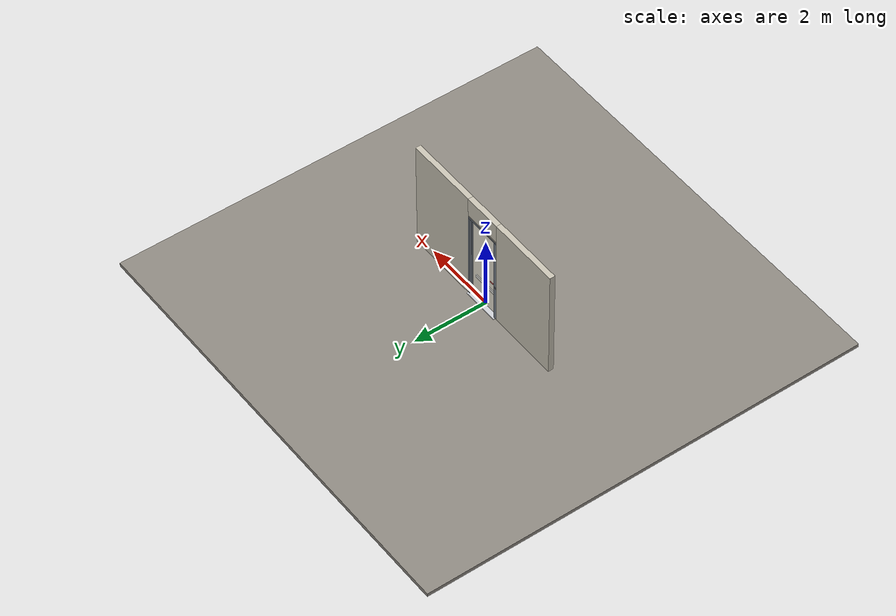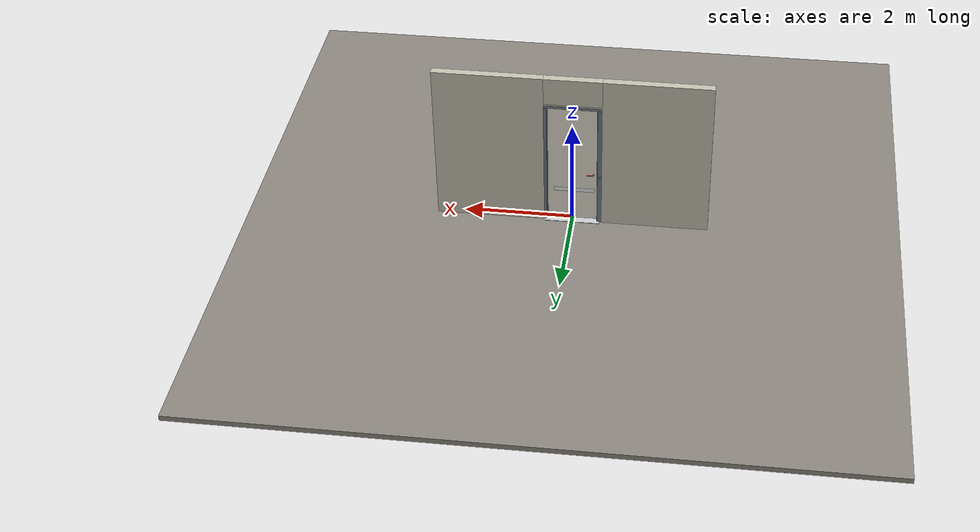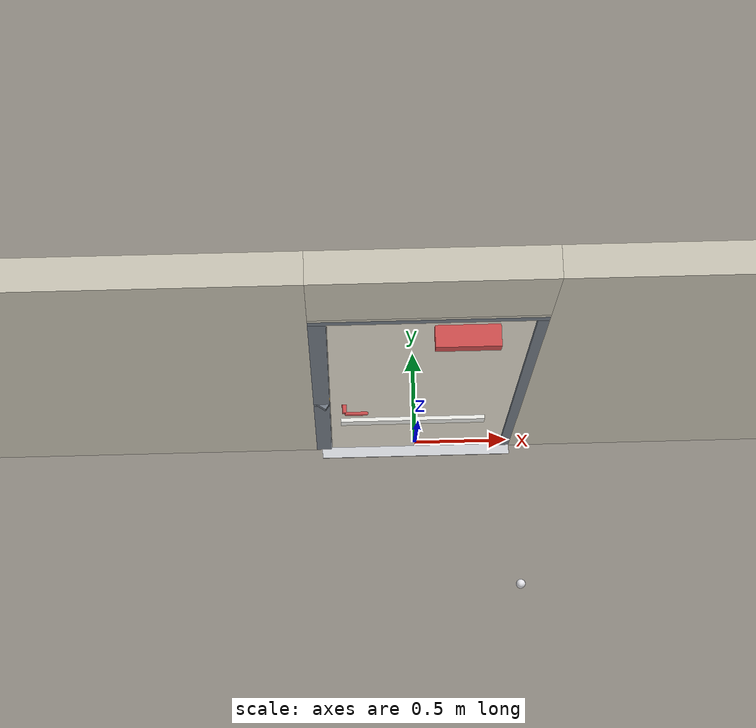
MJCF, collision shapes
<?xml version="1.0" ?>
<mujoco model="db0443_swing_single_simple">
  <compiler angle="radian" meshdir="../../hardware" texturedir="../../textures" autolimits="true" inertiafromgeom="false"/>
  <option timestep="0.002" integrator="implicitfast" cone="elliptic" impratio="10" noslip_iterations="3">
    <flag multiccd="enable"/>
  </option>
  <size memory="16M"/>
  <default>
    <geom condim="4" solref="0.005 1" solimp="0.95 0.99 0.001"/>
    <joint solreflimit="0.005 1" solimplimit="0.95 0.99 0.001"/>
    <tendon solreflimit="0.005 1"/>
    <equality solref="0.002 1"/>
  </default>
  <visual>
    <headlight ambient="0.4 0.4 0.4" diffuse="0.7 0.7 0.7" specular="0.2 0.2 0.2"/>
    <quality shadowsize="4096"/>
    <map znear="0.01" zfar="60"/>
  </visual>
  <asset>
    <mesh name="closer_body_fdc4667657" file="closer_body_fdc4667657.obj"/>
    <mesh name="hinge_e22b26c0c1" file="hinge_e22b26c0c1.obj"/>
    <mesh name="hinge_jamb_e1d088f8dc" file="hinge_jamb_e1d088f8dc.obj"/>
    <mesh name="lever_6268dcb28c" file="lever_6268dcb28c.obj"/>
    <material name="mat_floor" rgba="0.55 0.53 0.5 1" specular="0.2" shininess="0.15" reflectance="0"/>
    <material name="mat_wall" rgba="0.78 0.76 0.7 1" specular="0.2" shininess="0.1" reflectance="0"/>
    <material name="mat_leaf" rgba="0.9 0.88 0.82 1" specular="0.23" shininess="0.42" reflectance="0.02"/>
    <material name="mat_hinge" rgba="0.65 0.66 0.68 1" specular="0.74" shininess="0.5" reflectance="0.36"/>
    <material name="mat_op_stainless" rgba="0.75 0.76 0.77 1" specular="0.8" shininess="0.65" reflectance="0.4"/>
    <material name="mat_trim" rgba="0.85 0.66 0.3 1" specular="0.8" shininess="0.75" reflectance="0.4"/>
    <material name="mat_bolt" rgba="0.85 0.66 0.3 1" specular="0.8" shininess="0.75" reflectance="0.4"/>
    <material name="mat_frame" rgba="0.45 0.48 0.52 1" specular="0.32" shininess="0.6" reflectance="0.08"/>
    <material name="mat_seal" rgba="0.1 0.1 0.1 1" specular="0.2" shininess="0.1" reflectance="0"/>
    <material name="mat_threshold" rgba="0.8 0.81 0.83 1" specular="0.8" shininess="0.6" reflectance="0.4"/>
    <material name="mat_closer" rgba="0.22 0.17 0.13 1" specular="0.8" shininess="0.6" reflectance="0.4"/>
    <material name="mat_bumper" rgba="0.92 0.92 0.9 1" specular="0.2" shininess="0.6" reflectance="0"/>
    <material name="mat_stop" rgba="0.9 0.9 0.92 1" specular="0.8" shininess="0.9" reflectance="0.4"/>
    <texture name="skybox" type="skybox" builtin="gradient" rgb1="0.6 0.7 0.85" rgb2="0.9 0.92 0.95" width="256" height="256"/>
  </asset>
  <worldbody>
    <light name="sun" pos="1.5 -2.5 4" dir="-0.3 0.5 -0.8" directional="true" diffuse="0.8 0.8 0.8" specular="0.3 0.3 0.3" castshadow="true"/>
    <light name="fill" pos="-1.5 2.5 3" dir="0.3 -0.5 -0.7" directional="true" diffuse="0.35 0.35 0.4" castshadow="false"/>
    <camera name="robot_view" pos="0 -2.879313 2.043887" xyaxes="1 0 0 0 0.26963 0.962964" fovy="52"/>
    <camera name="far_view" pos="0 2.966312 2.043887" xyaxes="-1 0 0 0 -0.26963 0.962964" fovy="52"/>
    <camera name="iso" pos="-2.221337 -2.411663 2.511538" xyaxes="0.741536 -0.670913 0 0.242917 0.268487 0.932151" fovy="46"/>
    <camera name="detail_handle" pos="-0.1105 -0.877 1.296" xyaxes="0.97561 0.219512 0 -0.070934 0.315262 0.94635" fovy="38"/>
    <geom name="floor" type="box" size="6 6 0.05" pos="0 0 -0.05" material="mat_floor" group="0" contype="1" conaffinity="1" friction="0.8 0.005 0.0001" density="2400"/>
    <geom name="wall_left" type="box" size="0.97975 0.0725 1.5255" pos="-1.52025 0.0435 1.5255" material="mat_wall" group="0" contype="1" conaffinity="1" friction="0.6 0.005 0.0001" density="800"/>
    <geom name="wall_right" type="box" size="0.99475 0.0725 1.5255" pos="1.50525 0.0435 1.5255" material="mat_wall" group="0" contype="1" conaffinity="1" friction="0.6 0.005 0.0001" density="800"/>
    <geom name="wall_header" type="box" size="0.5255 0.0725 0.26" pos="-0.015 0.0435 2.791" material="mat_wall" group="0" contype="1" conaffinity="1" friction="0.6 0.005 0.0001" density="800"/>
    <geom name="hinge_0_jamb" type="mesh" mesh="hinge_jamb_e1d088f8dc" pos="0.4575 -0.029 0.259" quat="0 0 1 0" material="mat_hinge" group="1" contype="0" conaffinity="0" density="7850"/>
    <geom name="hinge_1_jamb" type="mesh" mesh="hinge_jamb_e1d088f8dc" pos="0.4575 -0.029 0.928333" quat="0 0 1 0" material="mat_hinge" group="1" contype="0" conaffinity="0" density="7850"/>
    <geom name="hinge_2_jamb" type="mesh" mesh="hinge_jamb_e1d088f8dc" pos="0.4575 -0.029 1.597667" quat="0 0 1 0" material="mat_hinge" group="1" contype="0" conaffinity="0" density="7850"/>
    <geom name="hinge_3_jamb" type="mesh" mesh="hinge_jamb_e1d088f8dc" pos="0.4575 -0.029 2.267" quat="0 0 1 0" material="mat_hinge" group="1" contype="0" conaffinity="0" density="7850"/>
    <geom name="jamb_hinge" type="box" size="0.025 0.0725 1.2255" pos="0.4855 0.0435 1.2255" material="mat_frame" group="0" contype="1" conaffinity="1" friction="0.6 0.005 0.0001" density="300"/>
    <geom name="strike_1016_wall_n" type="box" size="0.04 0.05325 0.0183" pos="-0.5005 0.06275 1.016" material="mat_frame" group="0" contype="1" conaffinity="1" friction="0.6 0.005 0.0001" density="300"/>
    <geom name="strike_1016_wall_p" type="box" size="0.04 0.008 0.0183" pos="-0.5005 -0.0175 1.016" material="mat_frame" group="0" contype="1" conaffinity="1" friction="0.6 0.005 0.0001" density="300"/>
    <geom name="strike_1016_ramp" type="box" size="0.04 0.018028 0.0183" pos="-0.503782 -0.018312 1.016" quat="0.957092 0 0 -0.289784" material="mat_frame" group="0" contype="1" conaffinity="1" friction="0.12 0.005 0.0001" density="300"/>
    <geom name="strike_1016_back" type="box" size="0.0285 0.0095 0.0183" pos="-0.512 0 1.016" material="mat_frame" group="0" contype="1" conaffinity="1" friction="0.6 0.005 0.0001" density="300"/>
    <geom name="jamb_strike_0" type="box" size="0.04 0.0725 0.49885" pos="-0.5005 0.0435 0.49885" material="mat_frame" group="0" contype="1" conaffinity="1" friction="0.6 0.005 0.0001" density="300"/>
    <geom name="jamb_strike_1" type="box" size="0.04 0.0725 0.70835" pos="-0.5005 0.0435 1.74265" material="mat_frame" group="0" contype="1" conaffinity="1" friction="0.6 0.005 0.0001" density="300"/>
    <geom name="jamb_head" type="box" size="0.5255 0.0725 0.025" pos="-0.015 0.0435 2.476" material="mat_frame" group="0" contype="1" conaffinity="1" friction="0.6 0.005 0.0001" density="300"/>
    <geom name="head_stud" type="box" size="0.5255 0.0725 0.015" pos="-0.015 0.0435 2.516" material="mat_wall" group="0" contype="1" conaffinity="1" friction="0.6 0.005 0.0001" density="500"/>
    <geom name="stop_hinge" type="box" size="0.0055 0.016 1.2255" pos="0.455 0.0385 1.2255" material="mat_frame" group="0" contype="1" conaffinity="1" friction="0.6 0.005 0.0001" density="300"/>
    <geom name="stop_strike" type="box" size="0.0055 0.016 1.2255" pos="-0.455 0.0385 1.2255" material="mat_frame" group="0" contype="1" conaffinity="1" friction="0.6 0.005 0.0001" density="300"/>
    <geom name="stop_head" type="box" size="0.4605 0.016 0.0055" pos="0 0.0385 2.4455" material="mat_frame" group="0" contype="1" conaffinity="1" friction="0.6 0.005 0.0001" density="300"/>
    <geom name="seal_hinge" type="box" size="0.004 0.0025 1.2255" pos="0.4575 0.0245 1.2255" material="mat_seal" group="1" contype="0" conaffinity="0" density="1100"/>
    <geom name="seal_strike" type="box" size="0.004 0.0025 1.2255" pos="-0.4575 0.0245 1.2255" material="mat_seal" group="1" contype="0" conaffinity="0" density="1100"/>
    <geom name="seal_head" type="box" size="0.4405 0.0025 0.008" pos="0 0.0245 2.439" material="mat_seal" group="1" contype="0" conaffinity="0" density="1100"/>
    <geom name="threshold" type="box" size="0.5105 0.1225 0.004" pos="0 0.0435 0.004" material="mat_threshold" group="0" contype="1" conaffinity="1" friction="0.6 0.005 0.0001" density="2700"/>
    <geom name="floor_stop_dome" type="sphere" size="0.025" pos="0.545135 -0.801201 0" material="mat_stop" group="0" contype="1" conaffinity="1" friction="0.6 0.005 0.0001" density="7000"/>
    <site name="approach_point" pos="0 -1.5 0" quat="1 0 0 0" size="0.05" rgba="0.2 0.9 0.2 0.5" group="4"/>
    <site name="goal_point" pos="0 1.5 0" quat="1 0 0 0" size="0.05" rgba="0.2 0.9 0.2 0.5" group="4"/>
    <site name="door_plane_center" pos="0 0 1.2255" quat="1 0 0 0" size="0.02" rgba="0.2 0.9 0.2 0.5" group="4"/>
    <body name="leaf" pos="0.4605 0 0">
      <inertial pos="-0.423046 -0.014798 1.43452" mass="60.164218" quat="0.51397 -0.513128 -0.47552 -0.496402" diaginertia="3.66987264 36.558877758 40.127155857"/>
      <joint name="leaf_hinge" type="hinge" axis="0 0 1" pos="-0.003 -0.029 0" limited="true" range="0 1.658063" solreflimit="0.02 1" damping="12.307281" frictionloss="2.230654" stiffness="16.004621" springref="-1.722003" armature="0.02"/>
      <geom name="leaf_slab" type="box" size="0.457 0.022 1.219" pos="-0.46 0 1.228" material="mat_leaf" group="0" contype="1" conaffinity="1" friction="0.4 0.005 0.0001" density="1"/>
      <geom name="hinge_0" type="mesh" mesh="hinge_e22b26c0c1" pos="-0.003 -0.029 0.259" quat="0 0 1 0" material="mat_hinge" group="1" contype="0" conaffinity="0" density="7850"/>
      <geom name="hinge_1" type="mesh" mesh="hinge_e22b26c0c1" pos="-0.003 -0.029 0.928333" quat="0 0 1 0" material="mat_hinge" group="1" contype="0" conaffinity="0" density="7850"/>
      <geom name="hinge_2" type="mesh" mesh="hinge_e22b26c0c1" pos="-0.003 -0.029 1.597667" quat="0 0 1 0" material="mat_hinge" group="1" contype="0" conaffinity="0" density="7850"/>
      <geom name="hinge_3" type="mesh" mesh="hinge_e22b26c0c1" pos="-0.003 -0.029 2.267" quat="0 0 1 0" material="mat_hinge" group="1" contype="0" conaffinity="0" density="7850"/>
      <geom name="leaf_latch_bolt_faceplate" type="box" size="0.0006 0.014 0.0283" pos="-0.9164 0 1.016" material="mat_bolt" group="1" contype="0" conaffinity="0" density="8500"/>
      <geom name="closer_body" type="mesh" mesh="closer_body_fdc4667657" pos="-0.3 -0.022 2.358" quat="0 0 -0.707107 0.707107" material="mat_closer" group="1" contype="0" conaffinity="0" density="2000"/>
      <geom name="closer_body_col" type="box" size="0.145 0.05 0.035" pos="-0.3 -0.072 2.358" material="mat_closer" group="3" contype="1" conaffinity="1" rgba="0.8 0.3 0.3 0.25" friction="0.6 0.005 0.0001" density="2000"/>
      <geom name="bumper_rail_n" type="box" size="0.372 0.01 0.04" pos="-0.495 -0.032 0.659" material="mat_bumper" group="0" contype="1" conaffinity="1" friction="0.6 0.005 0.0001" density="1200"/>
      <geom name="bumper_rail_p" type="box" size="0.372 0.01 0.04" pos="-0.495 0.032 0.659" material="mat_bumper" group="0" contype="1" conaffinity="1" friction="0.6 0.005 0.0001" density="1200"/>
      <site name="leaf_edge_mid" pos="-0.917 0 1.219" quat="1 0 0 0" size="0.02" rgba="0.2 0.9 0.2 0.5" group="4"/>
      <body name="leaf_handle" pos="-0.847 0 1.016">
        <inertial pos="0.03705 0 0" mass="0.984967" quat="0.707107 0 0 -0.707107" diaginertia="0.002278035 0.00380889 0.005520856"/>
        <joint name="leaf_handle_hinge" type="hinge" axis="0 1 0" limited="true" range="0 0.96" damping="0.255791" frictionloss="0.05" stiffness="1.2" springref="-0.583333" armature="0.01"/>
        <geom name="leaf_handle_lever_n" type="mesh" mesh="lever_6268dcb28c" pos="0 -0.022 0" quat="0 0 -0.707107 0.707107" material="mat_op_stainless" group="1" contype="0" conaffinity="0" density="3000"/>
        <geom name="leaf_handle_lever_col_n" type="capsule" size="0.0095 0.0505" pos="0.06 -0.077 0" quat="0.707107 0 0.707107 0" material="mat_op_stainless" group="3" contype="1" conaffinity="1" rgba="0.8 0.3 0.3 0.25" friction="0.7 0.01 0.0001" density="3000"/>
        <geom name="leaf_handle_hub_col_n" type="cylinder" size="0.012 0.022" pos="0 -0.052 0" quat="0.707107 -0.707107 0 0" material="mat_op_stainless" group="3" contype="1" conaffinity="1" rgba="0.8 0.3 0.3 0.25" friction="0.6 0.005 0.0001" density="3000"/>
        <geom name="leaf_handle_lever_p" type="mesh" mesh="lever_6268dcb28c" pos="0 0.022 0" quat="0 0 0.707107 0.707107" material="mat_op_stainless" group="1" contype="0" conaffinity="0" density="3000"/>
        <geom name="leaf_handle_lever_col_p" type="capsule" size="0.0095 0.0505" pos="0.06 0.077 0" quat="0.707107 0 0.707107 0" material="mat_op_stainless" group="3" contype="1" conaffinity="1" rgba="0.8 0.3 0.3 0.25" friction="0.7 0.01 0.0001" density="3000"/>
        <geom name="leaf_handle_hub_col_p" type="cylinder" size="0.012 0.022" pos="0 0.052 0" quat="0.707107 -0.707107 0 0" material="mat_op_stainless" group="3" contype="1" conaffinity="1" rgba="0.8 0.3 0.3 0.25" friction="0.6 0.005 0.0001" density="3000"/>
        <site name="leaf_handle_grip_n" pos="0.096 -0.077 0" quat="1 0 0 0" size="0.012" rgba="0.2 0.9 0.2 0.5" group="4"/>
        <site name="leaf_handle_grip_p" pos="0.096 0.077 0" quat="1 0 0 0" size="0.012" rgba="0.2 0.9 0.2 0.5" group="4"/>
      </body>
      <body name="leaf_latch_bolt" pos="-0.917 0 1.016">
        <inertial pos="0.0055 0 0" mass="0.074627" quat="0.92388 0.382683 0 0" diaginertia="0.000002271 0.000013255 0.000013255"/>
        <joint name="leaf_latch_bolt_slide" type="slide" axis="1 0 0" limited="true" range="0 0.019" damping="2" frictionloss="0.3" stiffness="600" springref="-0.01" armature="0.1"/>
        <geom name="leaf_latch_bolt_capsule" type="capsule" size="0.008 0.0165" pos="0.0055 0 0" quat="0.707107 0 -0.707107 0" material="mat_bolt" group="0" contype="1" conaffinity="1" friction="0.2 0.005 0.0001" density="8500"/>
      </body>
    </body>
  </worldbody>
  <tendon>
    <fixed name="leaf_latch_bolt_coupling" limited="true" range="0 10">
      <joint joint="leaf_latch_bolt_slide" coef="1"/>
      <joint joint="leaf_handle_hinge" coef="-0.020879"/>
    </fixed>
  </tendon>
  <sensor>
    <jointpos name="leaf_hinge_pos" joint="leaf_hinge"/>
    <jointvel name="leaf_hinge_vel" joint="leaf_hinge"/>
    <jointpos name="leaf_handle_hinge_pos" joint="leaf_handle_hinge"/>
    <jointvel name="leaf_handle_hinge_vel" joint="leaf_handle_hinge"/>
    <jointpos name="leaf_latch_bolt_slide_pos" joint="leaf_latch_bolt_slide"/>
    <jointvel name="leaf_latch_bolt_slide_vel" joint="leaf_latch_bolt_slide"/>
  </sensor>
</mujoco>
